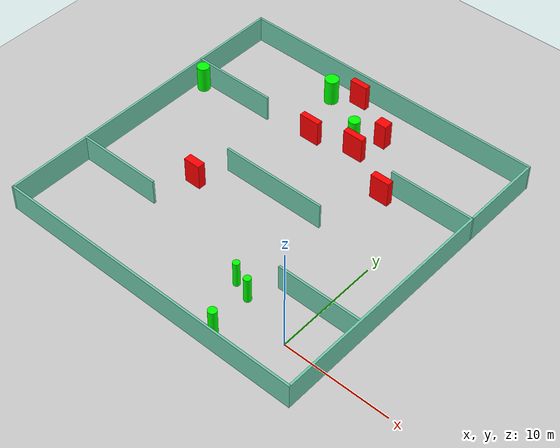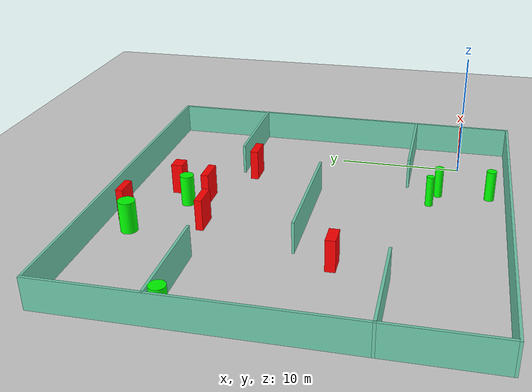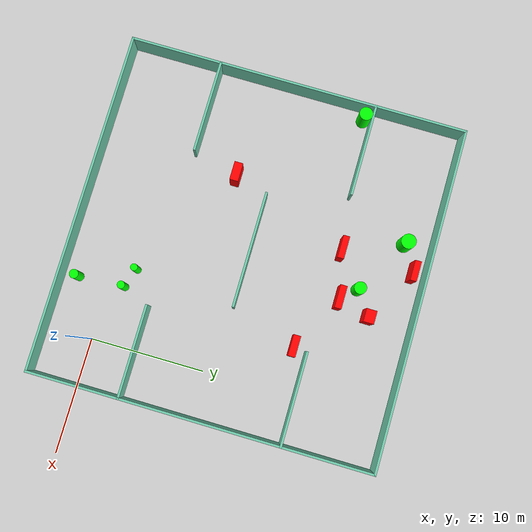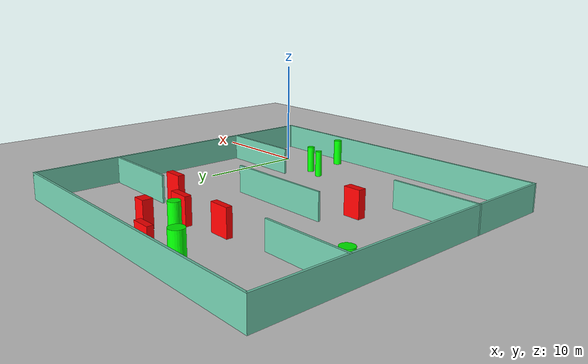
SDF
<sdf version="1.7">
 <world name="default">
  <light name="sun" type="directional">
   <pose>0 0 10 0 -0 0</pose>
   <diffuse>0.8 0.8 0.8 1</diffuse>
   <specular>0.2 0.2 0.2 1</specular>
   <attenuation>
    <range>1000</range>
    <constant>0.9</constant>
    <linear>0.01</linear>
    <quadratic>0.001</quadratic>
   </attenuation>
   <direction>-0.5 0.1 -0.9</direction>
   <spot><inner_angle>0</inner_angle><outer_angle>0</outer_angle><falloff>0</falloff></spot>
  </light>
  <model name="ground_plane">
   <static>1</static>
   <link name="link">
    <collision name="collision">
     <geometry><plane><normal>0 0 1</normal><size>100 100</size></plane></geometry>
     <surface>
      <contact><collide_bitmask>65535</collide_bitmask></contact>
      <friction><ode><mu>100</mu><mu2>50</mu2></ode></friction>
     </surface>
    </collision>
    <visual name="visual">
     <cast_shadows>0</cast_shadows>
     <geometry><plane><normal>0 0 1</normal><size>100 100</size></plane></geometry>
     <material>
      <script><uri>file://media/materials/scripts/gazebo.material</uri><name>Gazebo/Grey</name></script>
     </material>
    </visual>
   </link>
  </model>
  <gravity>0 0 -9.8</gravity>
  <magnetic_field>6e-06 2.3e-05 -4.2e-05</magnetic_field>
  <atmosphere type="adiabatic"/>
  <physics type="ode">
   <max_step_size>0.001</max_step_size>
   <real_time_factor>1</real_time_factor>
   <real_time_update_rate>1000</real_time_update_rate>
  </physics>
  <scene><ambient>0.4 0.4 0.4 1</ambient><background>0.7 0.7 0.7 1</background><shadows>1</shadows></scene>
  <spherical_coordinates>
   <surface_model>EARTH_WGS84</surface_model>
   <latitude_deg>0</latitude_deg>
   <longitude_deg>0</longitude_deg>
   <elevation>0</elevation>
   <heading_deg>0</heading_deg>
  </spherical_coordinates>
  <model name="my_base_walls">
   <link name="Wall_10">
    <collision name="Wall_10_Collision">
     <geometry><box><size>8.2 0.2 2.5</size></box></geometry>
     <pose>0 0 1.25 0 -0 0</pose>
    </collision>
    <visual name="Wall_10_Visual">
     <pose>0 0 1.25 0 -0 0</pose>
     <geometry><box><size>8.2 0.2 2.5</size></box></geometry>
     <material>
      <script><uri>file://media/materials/scripts/gazebo.material</uri><name>Gazebo/Grey</name></script>
      <ambient>0.435294 0.796078 0.67451 1</ambient>
     </material>
     <meta><layer>0</layer></meta>
    </visual>
    <pose>-11 -7 0 0 -0 0</pose>
   </link>
   <link name="Wall_12">
    <collision name="Wall_12_Collision">
     <geometry><box><size>8.2 0.2 2.5</size></box></geometry>
     <pose>0 0 1.25 0 -0 0</pose>
    </collision>
    <visual name="Wall_12_Visual">
     <pose>0 0 1.25 0 -0 0</pose>
     <geometry><box><size>8.2 0.2 2.5</size></box></geometry>
     <material>
      <script><uri>file://media/materials/scripts/gazebo.material</uri><name>Gazebo/Grey</name></script>
      <ambient>0.435294 0.796078 0.67451 1</ambient>
     </material>
     <meta><layer>0</layer></meta>
    </visual>
    <pose>-11 7 0 0 -0 0</pose>
   </link>
   <link name="Wall_14">
    <collision name="Wall_14_Collision">
     <geometry><box><size>8.2 0.2 2.5</size></box></geometry>
     <pose>0 0 1.25 0 -0 0</pose>
    </collision>
    <visual name="Wall_14_Visual">
     <pose>0 0 1.25 0 -0 0</pose>
     <geometry><box><size>8.2 0.2 2.5</size></box></geometry>
     <material>
      <script><uri>file://media/materials/scripts/gazebo.material</uri><name>Gazebo/Grey</name></script>
      <ambient>0.435294 0.796078 0.67451 1</ambient>
     </material>
     <meta><layer>0</layer></meta>
    </visual>
    <pose>11 7 0 0 -0 3.14159</pose>
   </link>
   <link name="Wall_16">
    <collision name="Wall_16_Collision">
     <geometry><box><size>10.2 0.2 2.5</size></box></geometry>
     <pose>0 0 1.25 0 -0 0</pose>
    </collision>
    <visual name="Wall_16_Visual">
     <pose>0 0 1.25 0 -0 0</pose>
     <geometry><box><size>10.2 0.2 2.5</size></box></geometry>
     <material>
      <script><uri>file://media/materials/scripts/gazebo.material</uri><name>Gazebo/Grey</name></script>
      <ambient>0.435294 0.796078 0.67451 1</ambient>
     </material>
     <meta><layer>0</layer></meta>
    </visual>
    <pose>0 0 0 0 -0 3.14159</pose>
   </link>
   <link name="Wall_2">
    <collision name="Wall_2_Collision">
     <geometry><box><size>30.2 0.2 2.5</size></box></geometry>
     <pose>0 0 1.25 0 -0 0</pose>
    </collision>
    <visual name="Wall_2_Visual">
     <pose>0 0 1.25 0 -0 0</pose>
     <geometry><box><size>30.2 0.2 2.5</size></box></geometry>
     <material>
      <script><uri>file://media/materials/scripts/gazebo.material</uri><name>Gazebo/Grey</name></script>
      <ambient>0.435294 0.796078 0.67451 1</ambient>
     </material>
     <meta><layer>0</layer></meta>
    </visual>
    <pose>0 -15 0 0 -0 3.14159</pose>
   </link>
   <link name="Wall_3">
    <collision name="Wall_3_Collision">
     <geometry><box><size>30.2 0.2 2.5</size></box></geometry>
     <pose>0 0 1.25 0 -0 0</pose>
    </collision>
    <visual name="Wall_3_Visual">
     <pose>0 0 1.25 0 -0 0</pose>
     <geometry><box><size>30.2 0.2 2.5</size></box></geometry>
     <material>
      <script><uri>file://media/materials/scripts/gazebo.material</uri><name>Gazebo/Grey</name></script>
      <ambient>0.435294 0.796078 0.67451 1</ambient>
     </material>
     <meta><layer>0</layer></meta>
    </visual>
    <pose>-15 0 0 0 -0 1.5708</pose>
   </link>
   <link name="Wall_4">
    <collision name="Wall_4_Collision">
     <geometry><box><size>30.2 0.2 2.5</size></box></geometry>
     <pose>0 0 1.25 0 -0 0</pose>
    </collision>
    <visual name="Wall_4_Visual">
     <pose>0 0 1.25 0 -0 0</pose>
     <geometry><box><size>30.2 0.2 2.5</size></box></geometry>
     <material>
      <script><uri>file://media/materials/scripts/gazebo.material</uri><name>Gazebo/Grey</name></script>
      <ambient>0.435294 0.796078 0.67451 1</ambient>
     </material>
     <meta><layer>0</layer></meta>
    </visual>
    <pose>0 15 0 0 -0 0</pose>
   </link>
   <link name="Wall_6">
    <collision name="Wall_6_Collision">
     <geometry><box><size>30.2 0.2 2.5</size></box></geometry>
     <pose>0 0 1.25 0 -0 0</pose>
    </collision>
    <visual name="Wall_6_Visual">
     <pose>0 0 1.25 0 -0 0</pose>
     <geometry><box><size>30.2 0.2 2.5</size></box></geometry>
     <material>
      <script><uri>file://media/materials/scripts/gazebo.material</uri><name>Gazebo/Grey</name></script>
      <ambient>0.435294 0.796078 0.67451 1</ambient>
     </material>
     <meta><layer>0</layer></meta>
    </visual>
    <pose>15 0 0 0 -0 1.5708</pose>
   </link>
   <link name="Wall_8">
    <collision name="Wall_8_Collision">
     <geometry><box><size>8.2 0.2 2.5</size></box></geometry>
     <pose>0 0 1.25 0 -0 0</pose>
    </collision>
    <visual name="Wall_8_Visual">
     <pose>0 0 1.25 0 -0 0</pose>
     <geometry><box><size>8.2 0.2 2.5</size></box></geometry>
     <material>
      <script><uri>file://media/materials/scripts/gazebo.material</uri><name>Gazebo/Grey</name></script>
      <ambient>0.435294 0.796078 0.67451 1</ambient>
     </material>
     <meta><layer>0</layer></meta>
    </visual>
    <pose>11 -7 0 0 -0 3.14159</pose>
   </link>
   <static>1</static>
   <pose>-11 11 0 0 -0 0</pose>
  </model>
  <model name="cylinder1">
   <static>1</static>
   <link name="link">
    <inertial>
     <mass>1</mass>
     <inertia><ixx>0.5</ixx><ixy>0</ixy><ixz>0</ixz><iyy>0.5</iyy><iyz>0</iyz><izz>1</izz></inertia>
    </inertial>
    <collision name="collision">
     <geometry><cylinder><radius>0.5850537265712579</radius><length>2.5</length></cylinder></geometry>
    </collision>
    <visual name="visual">
     <geometry><cylinder><radius>0.5850537265712579</radius><length>2.5</length></cylinder></geometry>
     <material>
      <ambient>0 1 0 1</ambient>
      <diffuse>0 1 0 1</diffuse>
      <specular>0.1 0.1 0.1 1</specular>
      <emissive>0 0 0 0</emissive>
     </material>
    </visual>
   </link>
   <pose>-25.126753825909013 17.344852098112614 1.25 0 0 0</pose>
  </model>
  <model name="cylinder2">
   <static>1</static>
   <link name="link">
    <inertial>
     <mass>1</mass>
     <inertia><ixx>0.5</ixx><ixy>0</ixy><ixz>0</ixz><iyy>0.5</iyy><iyz>0</iyz><izz>1</izz></inertia>
    </inertial>
    <collision name="collision">
     <geometry><cylinder><radius>0.6509607045867429</radius><length>2.5</length></cylinder></geometry>
    </collision>
    <visual name="visual">
     <geometry><cylinder><radius>0.6509607045867429</radius><length>2.5</length></cylinder></geometry>
     <material>
      <ambient>0 1 0 1</ambient>
      <diffuse>0 1 0 1</diffuse>
      <specular>0.1 0.1 0.1 1</specular>
      <emissive>0 0 0 0</emissive>
     </material>
    </visual>
   </link>
   <pose>-15.392010848469212 23.714716809819482 1.25 0 0 0</pose>
  </model>
  <model name="cylinder3">
   <static>1</static>
   <link name="link">
    <inertial>
     <mass>1</mass>
     <inertia><ixx>0.5</ixx><ixy>0</ixy><ixz>0</ixz><iyy>0.5</iyy><iyz>0</iyz><izz>1</izz></inertia>
    </inertial>
    <collision name="collision">
     <geometry><cylinder><radius>0.538236120619466</radius><length>2.5</length></cylinder></geometry>
    </collision>
    <visual name="visual">
     <geometry><cylinder><radius>0.538236120619466</radius><length>2.5</length></cylinder></geometry>
     <material>
      <ambient>0 1 0 1</ambient>
      <diffuse>0 1 0 1</diffuse>
      <specular>0.1 0.1 0.1 1</specular>
      <emissive>0 0 0 0</emissive>
     </material>
    </visual>
   </link>
   <pose>-10.448692596973128 20.83587542553896 1.25 0 0 0</pose>
  </model>
  <model name="cylinder4">
   <static>1</static>
   <link name="link">
    <inertial>
     <mass>1</mass>
     <inertia><ixx>0.5</ixx><ixy>0</ixy><ixz>0</ixz><iyy>0.5</iyy><iyz>0</iyz><izz>1</izz></inertia>
    </inertial>
    <collision name="collision">
     <geometry><cylinder><radius>0.33265600247557603</radius><length>2.5</length></cylinder></geometry>
    </collision>
    <visual name="visual">
     <geometry><cylinder><radius>0.33265600247557603</radius><length>2.5</length></cylinder></geometry>
     <material>
      <ambient>0 1 0 1</ambient>
      <diffuse>0 1 0 1</diffuse>
      <specular>0.1 0.1 0.1 1</specular>
      <emissive>0 0 0 0</emissive>
     </material>
    </visual>
   </link>
   <pose>-5.073437289120454 1.4377983271352006 1.25 0 0 0</pose>
  </model>
  <model name="cylinder5">
   <static>1</static>
   <link name="link">
    <inertial>
     <mass>1</mass>
     <inertia><ixx>0.5</ixx><ixy>0</ixy><ixz>0</ixz><iyy>0.5</iyy><iyz>0</iyz><izz>1</izz></inertia>
    </inertial>
    <collision name="collision">
     <geometry><cylinder><radius>0.3931817276063081</radius><length>2.5</length></cylinder></geometry>
    </collision>
    <visual name="visual">
     <geometry><cylinder><radius>0.3931817276063081</radius><length>2.5</length></cylinder></geometry>
     <material>
      <ambient>0 1 0 1</ambient>
      <diffuse>0 1 0 1</diffuse>
      <specular>0.1 0.1 0.1 1</specular>
      <emissive>0 0 0 0</emissive>
     </material>
    </visual>
   </link>
   <pose>-4.85183736295421 -2.638985403962669 1.25 0 0 0</pose>
  </model>
  <model name="cylinder6">
   <static>1</static>
   <link name="link">
    <inertial>
     <mass>1</mass>
     <inertia><ixx>0.5</ixx><ixy>0</ixy><ixz>0</ixz><iyy>0.5</iyy><iyz>0</iyz><izz>1</izz></inertia>
    </inertial>
    <collision name="collision">
     <geometry><cylinder><radius>0.3075273138754345</radius><length>2.5</length></cylinder></geometry>
    </collision>
    <visual name="visual">
     <geometry><cylinder><radius>0.3075273138754345</radius><length>2.5</length></cylinder></geometry>
     <material>
      <ambient>0 1 0 1</ambient>
      <diffuse>0 1 0 1</diffuse>
      <specular>0.1 0.1 0.1 1</specular>
      <emissive>0 0 0 0</emissive>
     </material>
    </visual>
   </link>
   <pose>-6.797216274818229 2.0513161866009764 1.25 0 0 0</pose>
  </model>
  <model name="box1">
   <static>1</static>
   <link name="link">
    <inertial>
     <mass>1</mass>
     <inertia><ixx>0.083</ixx><ixy>0</ixy><ixz>0</ixz><iyy>0.083</iyy><iyz>0</iyz><izz>0.083</izz></inertia>
    </inertial>
    <collision name="collision">
     <geometry><box><size>2.0009569972057273 0.5984397986864674 2.5</size></box></geometry>
    </collision>
    <visual name="visual">
     <geometry><box><size>2.0009569972057273 0.5984397986864674 2.5</size></box></geometry>
     <material>
      <ambient>1 0 0 1</ambient>
      <diffuse>1 0 0 1</diffuse>
      <specular>0.1 0.1 0.1 1</specular>
      <emissive>0 0 0 0</emissive>
     </material>
    </visual>
    <sensor name="my_contact" type="contact">
     <contact><collision>box_collision</collision><topic>__default_topic__</topic></contact>
    </sensor>
   </link>
   <pose>-9.271485834052296 19.460773614373842 1.25 0 0 0</pose>
  </model>
  <model name="box2">
   <static>1</static>
   <link name="link">
    <inertial>
     <mass>1</mass>
     <inertia><ixx>0.083</ixx><ixy>0</ixy><ixz>0</ixz><iyy>0.083</iyy><iyz>0</iyz><izz>0.083</izz></inertia>
    </inertial>
    <collision name="collision">
     <geometry><box><size>1.967196875957122 0.564784271432813 2.5</size></box></geometry>
    </collision>
    <visual name="visual">
     <geometry><box><size>1.967196875957122 0.564784271432813 2.5</size></box></geometry>
     <material>
      <ambient>1 0 0 1</ambient>
      <diffuse>1 0 0 1</diffuse>
      <specular>0.1 0.1 0.1 1</specular>
      <emissive>0 0 0 0</emissive>
     </material>
    </visual>
    <sensor name="my_contact" type="contact">
     <contact><collision>box_collision</collision><topic>__default_topic__</topic></contact>
    </sensor>
   </link>
   <pose>-13.401125064757139 18.562308952969047 1.25 0 0 0</pose>
  </model>
  <model name="box3">
   <static>1</static>
   <link name="link">
    <inertial>
     <mass>1</mass>
     <inertia><ixx>0.083</ixx><ixy>0</ixy><ixz>0</ixz><iyy>0.083</iyy><iyz>0</iyz><izz>0.083</izz></inertia>
    </inertial>
    <collision name="collision">
     <geometry><box><size>1.62762196022063 0.7543347790636531 2.5</size></box></geometry>
    </collision>
    <visual name="visual">
     <geometry><box><size>1.62762196022063 0.7543347790636531 2.5</size></box></geometry>
     <material>
      <ambient>1 0 0 1</ambient>
      <diffuse>1 0 0 1</diffuse>
      <specular>0.1 0.1 0.1 1</specular>
      <emissive>0 0 0 0</emissive>
     </material>
    </visual>
    <sensor name="my_contact" type="contact">
     <contact><collision>box_collision</collision><topic>__default_topic__</topic></contact>
    </sensor>
   </link>
   <pose>-17.11525505389143 8.010081980956334 1.25 0 0 0</pose>
  </model>
  <model name="box4">
   <static>1</static>
   <link name="link">
    <inertial>
     <mass>1</mass>
     <inertia><ixx>0.083</ixx><ixy>0</ixy><ixz>0</ixz><iyy>0.083</iyy><iyz>0</iyz><izz>0.083</izz></inertia>
    </inertial>
    <collision name="collision">
     <geometry><box><size>1.7514972989728166 0.5536313341873484 2.5</size></box></geometry>
    </collision>
    <visual name="visual">
     <geometry><box><size>1.7514972989728166 0.5536313341873484 2.5</size></box></geometry>
     <material>
      <ambient>1 0 0 1</ambient>
      <diffuse>1 0 0 1</diffuse>
      <specular>0.1 0.1 0.1 1</specular>
      <emissive>0 0 0 0</emissive>
     </material>
    </visual>
    <sensor name="my_contact" type="contact">
     <contact><collision>box_collision</collision><topic>__default_topic__</topic></contact>
    </sensor>
   </link>
   <pose>-13.144642276644863 24.934227661383677 1.25 0 0 0</pose>
  </model>
  <model name="box5">
   <static>1</static>
   <link name="link">
    <inertial>
     <mass>1</mass>
     <inertia><ixx>0.083</ixx><ixy>0</ixy><ixz>0</ixz><iyy>0.083</iyy><iyz>0</iyz><izz>0.083</izz></inertia>
    </inertial>
    <collision name="collision">
     <geometry><box><size>1.153666482869276 0.9273815425865714 2.5</size></box></geometry>
    </collision>
    <visual name="visual">
     <geometry><box><size>1.153666482869276 0.9273815425865714 2.5</size></box></geometry>
     <material>
      <ambient>1 0 0 1</ambient>
      <diffuse>1 0 0 1</diffuse>
      <specular>0.1 0.1 0.1 1</specular>
      <emissive>0 0 0 0</emissive>
     </material>
    </visual>
    <sensor name="my_contact" type="contact">
     <contact><collision>box_collision</collision><topic>__default_topic__</topic></contact>
    </sensor>
   </link>
   <pose>-8.379828474356101 22.242262997708565 1.25 0 0 0</pose>
  </model>
  <model name="box6">
   <static>1</static>
   <link name="link">
    <inertial>
     <mass>1</mass>
     <inertia><ixx>0.083</ixx><ixy>0</ixy><ixz>0</ixz><iyy>0.083</iyy><iyz>0</iyz><izz>0.083</izz></inertia>
    </inertial>
    <collision name="collision">
     <geometry><box><size>1.8406493412877267 0.6350744496583177 2.5</size></box></geometry>
    </collision>
    <visual name="visual">
     <geometry><box><size>1.8406493412877267 0.6350744496583177 2.5</size></box></geometry>
     <material>
      <ambient>1 0 0 1</ambient>
      <diffuse>1 0 0 1</diffuse>
      <specular>0.1 0.1 0.1 1</specular>
      <emissive>0 0 0 0</emissive>
     </material>
    </visual>
    <sensor name="my_contact" type="contact">
     <contact><collision>box_collision</collision><topic>__default_topic__</topic></contact>
    </sensor>
   </link>
   <pose>-4.241015143105688 16.832716484241693 1.25 0 0 0</pose>
  </model>
 </world>
</sdf>
